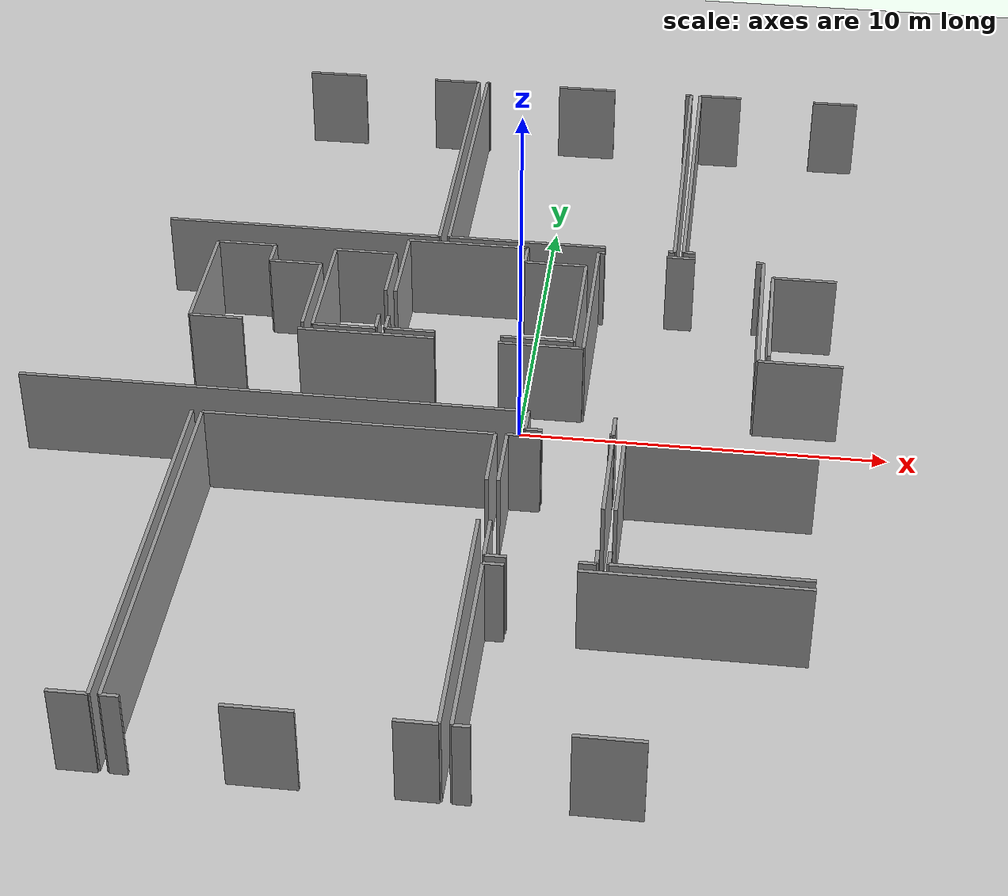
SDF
<sdf version="1.6">
 <world name="default">
  <model name="ground_plane">
   <static>1</static>
   <link name="link">
    <collision name="collision">
     <geometry><plane><normal>0 0 1</normal><size>100 100</size></plane></geometry>
     <surface><friction><ode><mu>100</mu><mu2>50</mu2></ode></friction></surface>
    </collision>
    <visual name="visual">
     <cast_shadows>0</cast_shadows>
     <geometry><plane><normal>0 0 1</normal><size>100 100</size></plane></geometry>
     <material>
      <script><uri>file://media/materials/scripts/gazebo.material</uri><name>Gazebo/Grey</name></script>
     </material>
    </visual>
   </link>
  </model>
  <model name="0510032266_A_40_1_103">
   <static>1</static>
   <link name="Wall_100">
    <collision name="Wall_100_Collision">
     <geometry><box><size>3.78097009477 0.1 2.5</size></box></geometry>
     <pose>1.89048504739 0 1.25 0 0 0</pose>
    </collision>
    <visual name="Wall_100_Visual">
     <pose>1.89048504739 0 1.25 0 0 0</pose>
     <geometry><box><size>3.78097009477 0.1 2.5</size></box></geometry>
     <material>
      <script><uri>file://media/materials/scripts/gazebo.material</uri><name>Gazebo/Grey</name></script>
      <ambient>1 1 1 1</ambient>
     </material>
    </visual>
    <pose>41.3064095321 -14.046251214 0 0 0 0.0</pose>
   </link>
   <link name="Wall_101">
    <collision name="Wall_101_Collision">
     <geometry><box><size>2.32893843117 0.1 2.5</size></box></geometry>
     <pose>1.16446921558 0 1.25 0 0 0</pose>
    </collision>
    <visual name="Wall_101_Visual">
     <pose>1.16446921558 0 1.25 0 0 0</pose>
     <geometry><box><size>2.32893843117 0.1 2.5</size></box></geometry>
     <material>
      <script><uri>file://media/materials/scripts/gazebo.material</uri><name>Gazebo/Grey</name></script>
      <ambient>1 1 1 1</ambient>
     </material>
    </visual>
    <pose>46.8415740394 -14.046251214 0 0 0 0.0</pose>
   </link>
   <link name="Wall_102">
    <collision name="Wall_102_Collision">
     <geometry><box><size>4.73278275387 0.1 2.5</size></box></geometry>
     <pose>2.36639137694 0 1.25 0 0 0</pose>
    </collision>
    <visual name="Wall_102_Visual">
     <pose>2.36639137694 0 1.25 0 0 0</pose>
     <geometry><box><size>4.73278275387 0.1 2.5</size></box></geometry>
     <material>
      <script><uri>file://media/materials/scripts/gazebo.material</uri><name>Gazebo/Grey</name></script>
      <ambient>1 1 1 1</ambient>
     </material>
    </visual>
    <pose>49.1705124706 -14.046251214 0 0 0 1.57079632679</pose>
   </link>
   <link name="Wall_103">
    <collision name="Wall_103_Collision">
     <geometry><box><size>0.17786975262 0.1 2.5</size></box></geometry>
     <pose>0.0889348763101 0 1.25 0 0 0</pose>
    </collision>
    <visual name="Wall_103_Visual">
     <pose>0.0889348763101 0 1.25 0 0 0</pose>
     <geometry><box><size>0.17786975262 0.1 2.5</size></box></geometry>
     <material>
      <script><uri>file://media/materials/scripts/gazebo.material</uri><name>Gazebo/Grey</name></script>
      <ambient>1 1 1 1</ambient>
     </material>
    </visual>
    <pose>49.1705124706 -9.31346846018 0 0 0 0.0</pose>
   </link>
   <link name="Wall_104">
    <collision name="Wall_104_Collision">
     <geometry><box><size>0.801366080327 0.1 2.5</size></box></geometry>
     <pose>0.400683040164 0 1.25 0 0 0</pose>
    </collision>
    <visual name="Wall_104_Visual">
     <pose>0.400683040164 0 1.25 0 0 0</pose>
     <geometry><box><size>0.801366080327 0.1 2.5</size></box></geometry>
     <material>
      <script><uri>file://media/materials/scripts/gazebo.material</uri><name>Gazebo/Grey</name></script>
      <ambient>1 1 1 1</ambient>
     </material>
    </visual>
    <pose>51.132285074 -9.31346846018 0 0 0 0.0</pose>
   </link>
   <link name="Wall_105">
    <collision name="Wall_105_Collision">
     <geometry><box><size>0.20326158026 0.1 2.5</size></box></geometry>
     <pose>0.10163079013 0 1.25 0 0 0</pose>
    </collision>
    <visual name="Wall_105_Visual">
     <pose>0.10163079013 0 1.25 0 0 0</pose>
     <geometry><box><size>0.20326158026 0.1 2.5</size></box></geometry>
     <material>
      <script><uri>file://media/materials/scripts/gazebo.material</uri><name>Gazebo/Grey</name></script>
      <ambient>1 1 1 1</ambient>
     </material>
    </visual>
    <pose>53.6747687757 -9.31346846018 0 0 0 0.0</pose>
   </link>
   <link name="Wall_106">
    <collision name="Wall_106_Collision">
     <geometry><box><size>4.75043007408 0.1 2.5</size></box></geometry>
     <pose>2.37521503704 0 1.25 0 0 0</pose>
    </collision>
    <visual name="Wall_106_Visual">
     <pose>2.37521503704 0 1.25 0 0 0</pose>
     <geometry><box><size>4.75043007408 0.1 2.5</size></box></geometry>
     <material>
      <script><uri>file://media/materials/scripts/gazebo.material</uri><name>Gazebo/Grey</name></script>
      <ambient>1 1 1 1</ambient>
     </material>
    </visual>
    <pose>53.8780303559 -9.31346846018 0 0 0 -1.57079632679</pose>
   </link>
   <link name="Wall_107">
    <collision name="Wall_107_Collision">
     <geometry><box><size>2.27625038881 0.1 2.5</size></box></geometry>
     <pose>1.13812519441 0 1.25 0 0 0</pose>
    </collision>
    <visual name="Wall_107_Visual">
     <pose>1.13812519441 0 1.25 0 0 0</pose>
     <geometry><box><size>2.27625038881 0.1 2.5</size></box></geometry>
     <material>
      <script><uri>file://media/materials/scripts/gazebo.material</uri><name>Gazebo/Grey</name></script>
      <ambient>1 1 1 1</ambient>
     </material>
    </visual>
    <pose>53.8780303559 -14.0638985343 0 0 0 0.0</pose>
   </link>
   <link name="Wall_129">
    <collision name="Wall_129_Collision">
     <geometry><box><size>0.751344179876 0.1 2.5</size></box></geometry>
     <pose>0.375672089938 0 1.25 0 0 0</pose>
    </collision>
    <visual name="Wall_129_Visual">
     <pose>0.375672089938 0 1.25 0 0 0</pose>
     <geometry><box><size>0.751344179876 0.1 2.5</size></box></geometry>
     <material>
      <script><uri>file://media/materials/scripts/gazebo.material</uri><name>Gazebo/Grey</name></script>
      <ambient>1 1 1 1</ambient>
     </material>
    </visual>
    <pose>50.2807701341 -17.0206499038 0 0 0 -1.57079632679</pose>
   </link>
   <link name="Wall_130">
    <collision name="Wall_130_Collision">
     <geometry><box><size>0.0834121537983 0.1 2.5</size></box></geometry>
     <pose>0.0417060768992 0 1.25 0 0 0</pose>
    </collision>
    <visual name="Wall_130_Visual">
     <pose>0.0417060768992 0 1.25 0 0 0</pose>
     <geometry><box><size>0.0834121537983 0.1 2.5</size></box></geometry>
     <material>
      <script><uri>file://media/materials/scripts/gazebo.material</uri><name>Gazebo/Grey</name></script>
      <ambient>1 1 1 1</ambient>
     </material>
    </visual>
    <pose>50.2807701341 -17.7719940837 0 0 0 3.14159265359</pose>
   </link>
   <link name="Wall_131">
    <collision name="Wall_131_Collision">
     <geometry><box><size>0.444483942843 0.1 2.5</size></box></geometry>
     <pose>0.222241971422 0 1.25 0 0 0</pose>
    </collision>
    <visual name="Wall_131_Visual">
     <pose>0.222241971422 0 1.25 0 0 0</pose>
     <geometry><box><size>0.444483942843 0.1 2.5</size></box></geometry>
     <material>
      <script><uri>file://media/materials/scripts/gazebo.material</uri><name>Gazebo/Grey</name></script>
      <ambient>1 1 1 1</ambient>
     </material>
    </visual>
    <pose>48.4459566688 -17.7719940837 0 0 0 3.14159265359</pose>
   </link>
   <link name="Wall_132">
    <collision name="Wall_132_Collision">
     <geometry><box><size>0.770768928021 0.1 2.5</size></box></geometry>
     <pose>0.38538446401 0 1.25 0 0 0</pose>
    </collision>
    <visual name="Wall_132_Visual">
     <pose>0.38538446401 0 1.25 0 0 0</pose>
     <geometry><box><size>0.770768928021 0.1 2.5</size></box></geometry>
     <material>
      <script><uri>file://media/materials/scripts/gazebo.material</uri><name>Gazebo/Grey</name></script>
      <ambient>1 1 1 1</ambient>
     </material>
    </visual>
    <pose>48.001472726 -17.7719940837 0 0 0 1.57079632679</pose>
   </link>
   <link name="Wall_133">
    <collision name="Wall_133_Collision">
     <geometry><box><size>13.6825132831 0.1 2.5</size></box></geometry>
     <pose>6.84125664155 0 1.25 0 0 0</pose>
    </collision>
    <visual name="Wall_133_Visual">
     <pose>6.84125664155 0 1.25 0 0 0</pose>
     <geometry><box><size>13.6825132831 0.1 2.5</size></box></geometry>
     <material>
      <script><uri>file://media/materials/scripts/gazebo.material</uri><name>Gazebo/Grey</name></script>
      <ambient>1 1 1 1</ambient>
     </material>
    </visual>
    <pose>48.001472726 -17.0012251557 0 0 0 3.14159265359</pose>
   </link>
   <link name="Wall_168">
    <collision name="Wall_168_Collision">
     <geometry><box><size>0.997644907986 0.1 2.5</size></box></geometry>
     <pose>0.498822453993 0 1.25 0 0 0</pose>
    </collision>
    <visual name="Wall_168_Visual">
     <pose>0.498822453993 0 1.25 0 0 0</pose>
     <geometry><box><size>0.997644907986 0.1 2.5</size></box></geometry>
     <material>
      <script><uri>file://media/materials/scripts/gazebo.material</uri><name>Gazebo/Grey</name></script>
      <ambient>1 1 1 1</ambient>
     </material>
    </visual>
    <pose>39.2679536091 -28.6845128895 0 0 0 3.14159265359</pose>
   </link>
   <link name="Wall_174">
    <collision name="Wall_174_Collision">
     <geometry><box><size>10.6537791807 0.1 2.5</size></box></geometry>
     <pose>5.32688959034 0 1.25 0 0 0</pose>
    </collision>
    <visual name="Wall_174_Visual">
     <pose>5.32688959034 0 1.25 0 0 0</pose>
     <geometry><box><size>10.6537791807 0.1 2.5</size></box></geometry>
     <material>
      <script><uri>file://media/materials/scripts/gazebo.material</uri><name>Gazebo/Grey</name></script>
      <ambient>1 1 1 1</ambient>
     </material>
    </visual>
    <pose>39.2598282243 -18.0307368074 0 0 0 -1.57003365042</pose>
   </link>
   <link name="Wall_175">
    <collision name="Wall_175_Collision">
     <geometry><box><size>1.47069465692 0.1 2.5</size></box></geometry>
     <pose>0.735347328462 0 1.25 0 0 0</pose>
    </collision>
    <visual name="Wall_175_Visual">
     <pose>0.735347328462 0 1.25 0 0 0</pose>
     <geometry><box><size>1.47069465692 0.1 2.5</size></box></geometry>
     <material>
      <script><uri>file://media/materials/scripts/gazebo.material</uri><name>Gazebo/Grey</name></script>
      <ambient>1 1 1 1</ambient>
     </material>
    </visual>
    <pose>39.7095174918 -13.7584348477 0 0 0 3.14159265359</pose>
   </link>
   <link name="Wall_176">
    <collision name="Wall_176_Collision">
     <geometry><box><size>3.69501875821 0.1 2.5</size></box></geometry>
     <pose>1.84750937911 0 1.25 0 0 0</pose>
    </collision>
    <visual name="Wall_176_Visual">
     <pose>1.84750937911 0 1.25 0 0 0</pose>
     <geometry><box><size>3.69501875821 0.1 2.5</size></box></geometry>
     <material>
      <script><uri>file://media/materials/scripts/gazebo.material</uri><name>Gazebo/Grey</name></script>
      <ambient>1 1 1 1</ambient>
     </material>
    </visual>
    <pose>38.2388228349 -13.7584348477 0 0 0 1.57079632679</pose>
   </link>
   <link name="Wall_177">
    <collision name="Wall_177_Collision">
     <geometry><box><size>1.67763805219 0.1 2.5</size></box></geometry>
     <pose>0.838819026096 0 1.25 0 0 0</pose>
    </collision>
    <visual name="Wall_177_Visual">
     <pose>0.838819026096 0 1.25 0 0 0</pose>
     <geometry><box><size>1.67763805219 0.1 2.5</size></box></geometry>
     <material>
      <script><uri>file://media/materials/scripts/gazebo.material</uri><name>Gazebo/Grey</name></script>
      <ambient>1 1 1 1</ambient>
     </material>
    </visual>
    <pose>38.2388228349 -10.0634160895 0 0 0 0.0</pose>
   </link>
   <link name="Wall_178">
    <collision name="Wall_178_Collision">
     <geometry><box><size>0.790447594442 0.1 2.5</size></box></geometry>
     <pose>0.395223797221 0 1.25 0 0 0</pose>
    </collision>
    <visual name="Wall_178_Visual">
     <pose>0.395223797221 0 1.25 0 0 0</pose>
     <geometry><box><size>0.790447594442 0.1 2.5</size></box></geometry>
     <material>
      <script><uri>file://media/materials/scripts/gazebo.material</uri><name>Gazebo/Grey</name></script>
      <ambient>1 1 1 1</ambient>
     </material>
    </visual>
    <pose>39.9164608871 -10.0634160895 0 0 0 -1.57079632679</pose>
   </link>
   <link name="Wall_179">
    <collision name="Wall_179_Collision">
     <geometry><box><size>1.46548933226 0.1 2.5</size></box></geometry>
     <pose>0.732744666129 0 1.25 0 0 0</pose>
    </collision>
    <visual name="Wall_179_Visual">
     <pose>0.732744666129 0 1.25 0 0 0</pose>
     <geometry><box><size>1.46548933226 0.1 2.5</size></box></geometry>
     <material>
      <script><uri>file://media/materials/scripts/gazebo.material</uri><name>Gazebo/Grey</name></script>
      <ambient>1 1 1 1</ambient>
     </material>
    </visual>
    <pose>39.9164608871 -10.853863684 0 0 0 0.0</pose>
   </link>
   <link name="Wall_180">
    <collision name="Wall_180_Collision">
     <geometry><box><size>2.90457117487 0.1 2.5</size></box></geometry>
     <pose>1.45228558743 0 1.25 0 0 0</pose>
    </collision>
    <visual name="Wall_180_Visual">
     <pose>1.45228558743 0 1.25 0 0 0</pose>
     <geometry><box><size>2.90457117487 0.1 2.5</size></box></geometry>
     <material>
      <script><uri>file://media/materials/scripts/gazebo.material</uri><name>Gazebo/Grey</name></script>
      <ambient>1 1 1 1</ambient>
     </material>
    </visual>
    <pose>41.3819502193 -10.853863684 0 0 0 -1.57070890657</pose>
   </link>
   <link name="Wall_181">
    <collision name="Wall_181_Collision">
     <geometry><box><size>2.00341520082 0.1 2.5</size></box></geometry>
     <pose>1.00170760041 0 1.25 0 0 0</pose>
    </collision>
    <visual name="Wall_181_Visual">
     <pose>1.00170760041 0 1.25 0 0 0</pose>
     <geometry><box><size>2.00341520082 0.1 2.5</size></box></geometry>
     <material>
      <script><uri>file://media/materials/scripts/gazebo.material</uri><name>Gazebo/Grey</name></script>
      <ambient>1 1 1 1</ambient>
     </material>
    </visual>
    <pose>48.8783794936 -13.7566574198 0 0 0 3.14159265359</pose>
   </link>
   <link name="Wall_182">
    <collision name="Wall_182_Collision">
     <geometry><box><size>1.37280916137 0.1 2.5</size></box></geometry>
     <pose>0.686404580686 0 1.25 0 0 0</pose>
    </collision>
    <visual name="Wall_182_Visual">
     <pose>0.686404580686 0 1.25 0 0 0</pose>
     <geometry><box><size>1.37280916137 0.1 2.5</size></box></geometry>
     <material>
      <script><uri>file://media/materials/scripts/gazebo.material</uri><name>Gazebo/Grey</name></script>
      <ambient>1 1 1 1</ambient>
     </material>
    </visual>
    <pose>45.0664313691 -13.7566574198 0 0 0 3.14159265359</pose>
   </link>
   <link name="Wall_183">
    <collision name="Wall_183_Collision">
     <geometry><box><size>0.585535545385 0.1 2.5</size></box></geometry>
     <pose>0.292767772692 0 1.25 0 0 0</pose>
    </collision>
    <visual name="Wall_183_Visual">
     <pose>0.292767772692 0 1.25 0 0 0</pose>
     <geometry><box><size>0.585535545385 0.1 2.5</size></box></geometry>
     <material>
      <script><uri>file://media/materials/scripts/gazebo.material</uri><name>Gazebo/Grey</name></script>
      <ambient>1 1 1 1</ambient>
     </material>
    </visual>
    <pose>43.6936222077 -13.7566574198 0 0 0 1.57079632679</pose>
   </link>
   <link name="Wall_184">
    <collision name="Wall_184_Collision">
     <geometry><box><size>2.62957767043 0.1 2.5</size></box></geometry>
     <pose>1.31478883521 0 1.25 0 0 0</pose>
    </collision>
    <visual name="Wall_184_Visual">
     <pose>1.31478883521 0 1.25 0 0 0</pose>
     <geometry><box><size>2.62957767043 0.1 2.5</size></box></geometry>
     <material>
      <script><uri>file://media/materials/scripts/gazebo.material</uri><name>Gazebo/Grey</name></script>
      <ambient>1 1 1 1</ambient>
     </material>
    </visual>
    <pose>43.6936222077 -11.9619630422 0 0 0 1.57079632679</pose>
   </link>
   <link name="Wall_185">
    <collision name="Wall_185_Collision">
     <geometry><box><size>3.4400848087 0.1 2.5</size></box></geometry>
     <pose>1.72004240435 0 1.25 0 0 0</pose>
    </collision>
    <visual name="Wall_185_Visual">
     <pose>1.72004240435 0 1.25 0 0 0</pose>
     <geometry><box><size>3.4400848087 0.1 2.5</size></box></geometry>
     <material>
      <script><uri>file://media/materials/scripts/gazebo.material</uri><name>Gazebo/Grey</name></script>
      <ambient>1 1 1 1</ambient>
     </material>
    </visual>
    <pose>43.6936222077 -9.33238537177 0 0 0 0.0</pose>
   </link>
   <link name="Wall_186">
    <collision name="Wall_186_Collision">
     <geometry><box><size>0.726206270512 0.1 2.5</size></box></geometry>
     <pose>0.363103135256 0 1.25 0 0 0</pose>
    </collision>
    <visual name="Wall_186_Visual">
     <pose>0.363103135256 0 1.25 0 0 0</pose>
     <geometry><box><size>0.726206270512 0.1 2.5</size></box></geometry>
     <material>
      <script><uri>file://media/materials/scripts/gazebo.material</uri><name>Gazebo/Grey</name></script>
      <ambient>1 1 1 1</ambient>
     </material>
    </visual>
    <pose>47.1337070164 -9.33238537177 0 0 0 -1.57079632679</pose>
   </link>
   <link name="Wall_187">
    <collision name="Wall_187_Collision">
     <geometry><box><size>1.74467247716 0.1 2.5</size></box></geometry>
     <pose>0.872336238582 0 1.25 0 0 0</pose>
    </collision>
    <visual name="Wall_187_Visual">
     <pose>0.872336238582 0 1.25 0 0 0</pose>
     <geometry><box><size>1.74467247716 0.1 2.5</size></box></geometry>
     <material>
      <script><uri>file://media/materials/scripts/gazebo.material</uri><name>Gazebo/Grey</name></script>
      <ambient>1 1 1 1</ambient>
     </material>
    </visual>
    <pose>47.1337070164 -10.0585916423 0 0 0 0.0</pose>
   </link>
   <link name="Wall_188">
    <collision name="Wall_188_Collision">
     <geometry><box><size>3.69806577753 0.1 2.5</size></box></geometry>
     <pose>1.84903288876 0 1.25 0 0 0</pose>
    </collision>
    <visual name="Wall_188_Visual">
     <pose>1.84903288876 0 1.25 0 0 0</pose>
     <geometry><box><size>3.69806577753 0.1 2.5</size></box></geometry>
     <material>
      <script><uri>file://media/materials/scripts/gazebo.material</uri><name>Gazebo/Grey</name></script>
      <ambient>1 1 1 1</ambient>
     </material>
    </visual>
    <pose>48.8783794936 -10.0585916423 0 0 0 -1.57079632679</pose>
   </link>
   <link name="Wall_189">
    <collision name="Wall_189_Collision">
     <geometry><box><size>1.75203610718 0.1 2.5</size></box></geometry>
     <pose>0.876018053589 0 1.25 0 0 0</pose>
    </collision>
    <visual name="Wall_189_Visual">
     <pose>0.876018053589 0 1.25 0 0 0</pose>
     <geometry><box><size>1.75203610718 0.1 2.5</size></box></geometry>
     <material>
      <script><uri>file://media/materials/scripts/gazebo.material</uri><name>Gazebo/Grey</name></script>
      <ambient>1 1 1 1</ambient>
     </material>
    </visual>
    <pose>43.4285315271 -13.7858580216 0 0 0 3.14159265359</pose>
   </link>
   <link name="Wall_190">
    <collision name="Wall_190_Collision">
     <geometry><box><size>3.70720683548 0.1 2.5</size></box></geometry>
     <pose>1.85360341774 0 1.25 0 0 0</pose>
    </collision>
    <visual name="Wall_190_Visual">
     <pose>1.85360341774 0 1.25 0 0 0</pose>
     <geometry><box><size>3.70720683548 0.1 2.5</size></box></geometry>
     <material>
      <script><uri>file://media/materials/scripts/gazebo.material</uri><name>Gazebo/Grey</name></script>
      <ambient>1 1 1 1</ambient>
     </material>
    </visual>
    <pose>41.6764954199 -13.7858580216 0 0 0 1.57079632679</pose>
   </link>
   <link name="Wall_191">
    <collision name="Wall_191_Collision">
     <geometry><box><size>1.73934019336 0.1 2.5</size></box></geometry>
     <pose>0.869670096679 0 1.25 0 0 0</pose>
    </collision>
    <visual name="Wall_191_Visual">
     <pose>0.869670096679 0 1.25 0 0 0</pose>
     <geometry><box><size>1.73934019336 0.1 2.5</size></box></geometry>
     <material>
      <script><uri>file://media/materials/scripts/gazebo.material</uri><name>Gazebo/Grey</name></script>
      <ambient>1 1 1 1</ambient>
     </material>
    </visual>
    <pose>41.6764954199 -10.0786511861 0 0 0 0.0</pose>
   </link>
   <link name="Wall_192">
    <collision name="Wall_192_Collision">
     <geometry><box><size>1.87899524538 0.1 2.5</size></box></geometry>
     <pose>0.93949762269 0 1.25 0 0 0</pose>
    </collision>
    <visual name="Wall_192_Visual">
     <pose>0.93949762269 0 1.25 0 0 0</pose>
     <geometry><box><size>1.87899524538 0.1 2.5</size></box></geometry>
     <material>
      <script><uri>file://media/materials/scripts/gazebo.material</uri><name>Gazebo/Grey</name></script>
      <ambient>1 1 1 1</ambient>
     </material>
    </visual>
    <pose>43.4158356133 -10.0786511861 0 0 0 -1.57079632679</pose>
   </link>
   <link name="Wall_193">
    <collision name="Wall_193_Collision">
     <geometry><box><size>0.668814293247 0.1 2.5</size></box></geometry>
     <pose>0.334407146623 0 1.25 0 0 0</pose>
    </collision>
    <visual name="Wall_193_Visual">
     <pose>0.334407146623 0 1.25 0 0 0</pose>
     <geometry><box><size>0.668814293247 0.1 2.5</size></box></geometry>
     <material>
      <script><uri>file://media/materials/scripts/gazebo.material</uri><name>Gazebo/Grey</name></script>
      <ambient>1 1 1 1</ambient>
     </material>
    </visual>
    <pose>43.4158356133 -13.1171642407 0 0 0 -1.55181246752</pose>
   </link>
   <link name="Wall_200">
    <collision name="Wall_200_Collision">
     <geometry><box><size>7.93494613759 0.1 2.5</size></box></geometry>
     <pose>3.96747306879 0 1.25 0 0 0</pose>
    </collision>
    <visual name="Wall_200_Visual">
     <pose>3.96747306879 0 1.25 0 0 0</pose>
     <geometry><box><size>7.93494613759 0.1 2.5</size></box></geometry>
     <material>
      <script><uri>file://media/materials/scripts/gazebo.material</uri><name>Gazebo/Grey</name></script>
      <ambient>1 1 1 1</ambient>
     </material>
    </visual>
    <pose>44.5330760295 -9.05028216668 0 0 0 3.14159265359</pose>
   </link>
   <link name="Wall_204">
    <collision name="Wall_204_Collision">
     <geometry><box><size>1.76397026617 0.1 2.5</size></box></geometry>
     <pose>0.881985133085 0 1.25 0 0 0</pose>
    </collision>
    <visual name="Wall_204_Visual">
     <pose>0.881985133085 0 1.25 0 0 0</pose>
     <geometry><box><size>1.76397026617 0.1 2.5</size></box></geometry>
     <material>
      <script><uri>file://media/materials/scripts/gazebo.material</uri><name>Gazebo/Grey</name></script>
      <ambient>1 1 1 1</ambient>
     </material>
    </visual>
    <pose>39.1277907206 -0.022090890047 0 0 0 0.0</pose>
   </link>
   <link name="Wall_205">
    <collision name="Wall_205_Collision">
     <geometry><box><size>1.40759596524 0.1 2.5</size></box></geometry>
     <pose>0.703797982619 0 1.25 0 0 0</pose>
    </collision>
    <visual name="Wall_205_Visual">
     <pose>0.703797982619 0 1.25 0 0 0</pose>
     <geometry><box><size>1.40759596524 0.1 2.5</size></box></geometry>
     <material>
      <script><uri>file://media/materials/scripts/gazebo.material</uri><name>Gazebo/Grey</name></script>
      <ambient>1 1 1 1</ambient>
     </material>
    </visual>
    <pose>43.124337432 -0.022090890047 0 0 0 0.0</pose>
   </link>
   <link name="Wall_206">
    <collision name="Wall_206_Collision">
     <geometry><box><size>9.02819134894 0.1 2.5</size></box></geometry>
     <pose>4.51409567447 0 1.25 0 0 0</pose>
    </collision>
    <visual name="Wall_206_Visual">
     <pose>4.51409567447 0 1.25 0 0 0</pose>
     <geometry><box><size>9.02819134894 0.1 2.5</size></box></geometry>
     <material>
      <script><uri>file://media/materials/scripts/gazebo.material</uri><name>Gazebo/Grey</name></script>
      <ambient>1 1 1 1</ambient>
     </material>
    </visual>
    <pose>44.5319333972 -0.022090890047 0 0 0 -1.5706697641</pose>
   </link>
   <link name="Wall_207">
    <collision name="Wall_207_Collision">
     <geometry><box><size>0.182440281595 0.1 2.5</size></box></geometry>
     <pose>0.0912201407977 0 1.25 0 0 0</pose>
    </collision>
    <visual name="Wall_207_Visual">
     <pose>0.0912201407977 0 1.25 0 0 0</pose>
     <geometry><box><size>0.182440281595 0.1 2.5</size></box></geometry>
     <material>
      <script><uri>file://media/materials/scripts/gazebo.material</uri><name>Gazebo/Grey</name></script>
      <ambient>1 1 1 1</ambient>
     </material>
    </visual>
    <pose>51.3351657769 -9.03352356044 0 0 0 3.14159265359</pose>
   </link>
   <link name="Wall_208">
    <collision name="Wall_208_Collision">
     <geometry><box><size>4.53764655846 0.1 2.5</size></box></geometry>
     <pose>2.26882327923 0 1.25 0 0 0</pose>
    </collision>
    <visual name="Wall_208_Visual">
     <pose>2.26882327923 0 1.25 0 0 0</pose>
     <geometry><box><size>4.53764655846 0.1 2.5</size></box></geometry>
     <material>
      <script><uri>file://media/materials/scripts/gazebo.material</uri><name>Gazebo/Grey</name></script>
      <ambient>1 1 1 1</ambient>
     </material>
    </visual>
    <pose>49.3448273673 -9.03352356044 0 0 0 3.14159265359</pose>
   </link>
   <link name="Wall_209">
    <collision name="Wall_209_Collision">
     <geometry><box><size>9.0114326704 0.1 2.5</size></box></geometry>
     <pose>4.5057163352 0 1.25 0 0 0</pose>
    </collision>
    <visual name="Wall_209_Visual">
     <pose>4.5057163352 0 1.25 0 0 0</pose>
     <geometry><box><size>9.0114326704 0.1 2.5</size></box></geometry>
     <material>
      <script><uri>file://media/materials/scripts/gazebo.material</uri><name>Gazebo/Grey</name></script>
      <ambient>1 1 1 1</ambient>
     </material>
    </visual>
    <pose>44.8071808089 -9.03352356044 0 0 0 1.57079632679</pose>
   </link>
   <link name="Wall_210">
    <collision name="Wall_210_Collision">
     <geometry><box><size>0.0915375386432 0.1 2.5</size></box></geometry>
     <pose>0.0457687693216 0 1.25 0 0 0</pose>
    </collision>
    <visual name="Wall_210_Visual">
     <pose>0.0457687693216 0 1.25 0 0 0</pose>
     <geometry><box><size>0.0915375386432 0.1 2.5</size></box></geometry>
     <material>
      <script><uri>file://media/materials/scripts/gazebo.material</uri><name>Gazebo/Grey</name></script>
      <ambient>1 1 1 1</ambient>
     </material>
    </visual>
    <pose>44.8071808089 -0.022090890047 0 0 0 0.0</pose>
   </link>
   <link name="Wall_211">
    <collision name="Wall_211_Collision">
     <geometry><box><size>1.77120693705 0.1 2.5</size></box></geometry>
     <pose>0.885603468524 0 1.25 0 0 0</pose>
    </collision>
    <visual name="Wall_211_Visual">
     <pose>0.885603468524 0 1.25 0 0 0</pose>
     <geometry><box><size>1.77120693705 0.1 2.5</size></box></geometry>
     <material>
      <script><uri>file://media/materials/scripts/gazebo.material</uri><name>Gazebo/Grey</name></script>
      <ambient>1 1 1 1</ambient>
     </material>
    </visual>
    <pose>47.1198684703 -0.022090890047 0 0 0 0.0</pose>
   </link>
   <link name="Wall_212">
    <collision name="Wall_212_Collision">
     <geometry><box><size>0.174187937612 0.1 2.5</size></box></geometry>
     <pose>0.0870939688061 0 1.25 0 0 0</pose>
    </collision>
    <visual name="Wall_212_Visual">
     <pose>0.0870939688061 0 1.25 0 0 0</pose>
     <geometry><box><size>0.174187937612 0.1 2.5</size></box></geometry>
     <material>
      <script><uri>file://media/materials/scripts/gazebo.material</uri><name>Gazebo/Grey</name></script>
      <ambient>1 1 1 1</ambient>
     </material>
    </visual>
    <pose>51.1268258311 -0.022090890047 0 0 0 0.0</pose>
   </link>
   <link name="Wall_213">
    <collision name="Wall_213_Collision">
     <geometry><box><size>9.01149738571 0.1 2.5</size></box></geometry>
     <pose>4.50574869286 0 1.25 0 0 0</pose>
    </collision>
    <visual name="Wall_213_Visual">
     <pose>4.50574869286 0 1.25 0 0 0</pose>
     <geometry><box><size>9.01149738571 0.1 2.5</size></box></geometry>
     <material>
      <script><uri>file://media/materials/scripts/gazebo.material</uri><name>Gazebo/Grey</name></script>
      <ambient>1 1 1 1</ambient>
     </material>
    </visual>
    <pose>51.3010137687 -0.022090890047 0 0 0 -1.5670064916</pose>
   </link>
   <link name="Wall_215">
    <collision name="Wall_215_Collision">
     <geometry><box><size>0.331109432429 0.1 2.5</size></box></geometry>
     <pose>0.165554716215 0 1.25 0 0 0</pose>
    </collision>
    <visual name="Wall_215_Visual">
     <pose>0.165554716215 0 1.25 0 0 0</pose>
     <geometry><box><size>0.331109432429 0.1 2.5</size></box></geometry>
     <material>
      <script><uri>file://media/materials/scripts/gazebo.material</uri><name>Gazebo/Grey</name></script>
      <ambient>1 1 1 1</ambient>
     </material>
    </visual>
    <pose>51.9226057094 -9.01435273057 0 0 0 3.14159265359</pose>
   </link>
   <link name="Wall_216">
    <collision name="Wall_216_Collision">
     <geometry><box><size>8.99518190071 0.1 2.5</size></box></geometry>
     <pose>4.49759095035 0 1.25 0 0 0</pose>
    </collision>
    <visual name="Wall_216_Visual">
     <pose>4.49759095035 0 1.25 0 0 0</pose>
     <geometry><box><size>8.99518190071 0.1 2.5</size></box></geometry>
     <material>
      <script><uri>file://media/materials/scripts/gazebo.material</uri><name>Gazebo/Grey</name></script>
      <ambient>1 1 1 1</ambient>
     </material>
    </visual>
    <pose>51.5914962769 -9.01435273057 0 0 0 1.57079632679</pose>
   </link>
   <link name="Wall_217">
    <collision name="Wall_217_Collision">
     <geometry><box><size>1.27962115393 0.1 2.5</size></box></geometry>
     <pose>0.639810576966 0 1.25 0 0 0</pose>
    </collision>
    <visual name="Wall_217_Visual">
     <pose>0.639810576966 0 1.25 0 0 0</pose>
     <geometry><box><size>1.27962115393 0.1 2.5</size></box></geometry>
     <material>
      <script><uri>file://media/materials/scripts/gazebo.material</uri><name>Gazebo/Grey</name></script>
      <ambient>1 1 1 1</ambient>
     </material>
    </visual>
    <pose>51.5914962769 -0.0191708298684 0 0 0 0.0</pose>
   </link>
   <link name="Wall_218">
    <collision name="Wall_218_Collision">
     <geometry><box><size>1.36468377653 0.1 2.5</size></box></geometry>
     <pose>0.682341888263 0 1.25 0 0 0</pose>
    </collision>
    <visual name="Wall_218_Visual">
     <pose>0.682341888263 0 1.25 0 0 0</pose>
     <geometry><box><size>1.36468377653 0.1 2.5</size></box></geometry>
     <material>
      <script><uri>file://media/materials/scripts/gazebo.material</uri><name>Gazebo/Grey</name></script>
      <ambient>1 1 1 1</ambient>
     </material>
    </visual>
    <pose>55.1410198628 -0.0191708298684 0 0 0 0.0</pose>
   </link>
   <link name="Wall_220">
    <collision name="Wall_220_Collision">
     <geometry><box><size>0.435469844031 0.1 2.5</size></box></geometry>
     <pose>0.217734922015 0 1.25 0 0 0</pose>
    </collision>
    <visual name="Wall_220_Visual">
     <pose>0.217734922015 0 1.25 0 0 0</pose>
     <geometry><box><size>0.435469844031 0.1 2.5</size></box></geometry>
     <material>
      <script><uri>file://media/materials/scripts/gazebo.material</uri><name>Gazebo/Grey</name></script>
      <ambient>1 1 1 1</ambient>
     </material>
    </visual>
    <pose>50.2993061683 -22.8369019431 0 0 0 3.14159265359</pose>
   </link>
   <link name="Wall_221">
    <collision name="Wall_221_Collision">
     <geometry><box><size>0.551002659794 0.1 2.5</size></box></geometry>
     <pose>0.275501329897 0 1.25 0 0 0</pose>
    </collision>
    <visual name="Wall_221_Visual">
     <pose>0.275501329897 0 1.25 0 0 0</pose>
     <geometry><box><size>0.551002659794 0.1 2.5</size></box></geometry>
     <material>
      <script><uri>file://media/materials/scripts/gazebo.material</uri><name>Gazebo/Grey</name></script>
      <ambient>1 1 1 1</ambient>
     </material>
    </visual>
    <pose>48.1104036666 -22.8369019431 0 0 0 3.14159265359</pose>
   </link>
   <link name="Wall_222">
    <collision name="Wall_222_Collision">
     <geometry><box><size>1.30006157518 0.1 2.5</size></box></geometry>
     <pose>0.650030787591 0 1.25 0 0 0</pose>
    </collision>
    <visual name="Wall_222_Visual">
     <pose>0.650030787591 0 1.25 0 0 0</pose>
     <geometry><box><size>1.30006157518 0.1 2.5</size></box></geometry>
     <material>
      <script><uri>file://media/materials/scripts/gazebo.material</uri><name>Gazebo/Grey</name></script>
      <ambient>1 1 1 1</ambient>
     </material>
    </visual>
    <pose>47.5594010068 -22.8369019431 0 0 0 1.57079632679</pose>
   </link>
   <link name="Wall_223">
    <collision name="Wall_223_Collision">
     <geometry><box><size>1.91035415252 0.1 2.5</size></box></geometry>
     <pose>0.955177076258 0 1.25 0 0 0</pose>
    </collision>
    <visual name="Wall_223_Visual">
     <pose>0.955177076258 0 1.25 0 0 0</pose>
     <geometry><box><size>1.91035415252 0.1 2.5</size></box></geometry>
     <material>
      <script><uri>file://media/materials/scripts/gazebo.material</uri><name>Gazebo/Grey</name></script>
      <ambient>1 1 1 1</ambient>
     </material>
    </visual>
    <pose>47.5594010068 -19.9582304435 0 0 0 1.57079632679</pose>
   </link>
   <link name="Wall_224">
    <collision name="Wall_224_Collision">
     <geometry><box><size>0.876525890142 0.1 2.5</size></box></geometry>
     <pose>0.438262945071 0 1.25 0 0 0</pose>
    </collision>
    <visual name="Wall_224_Visual">
     <pose>0.438262945071 0 1.25 0 0 0</pose>
     <geometry><box><size>0.876525890142 0.1 2.5</size></box></geometry>
     <material>
      <script><uri>file://media/materials/scripts/gazebo.material</uri><name>Gazebo/Grey</name></script>
      <ambient>1 1 1 1</ambient>
     </material>
    </visual>
    <pose>47.5594010068 -18.047876291 0 0 0 0.0</pose>
   </link>
   <link name="Wall_225">
    <collision name="Wall_225_Collision">
     <geometry><box><size>0.101694269699 0.1 2.5</size></box></geometry>
     <pose>0.0508471348497 0 1.25 0 0 0</pose>
    </collision>
    <visual name="Wall_225_Visual">
     <pose>0.0508471348497 0 1.25 0 0 0</pose>
     <geometry><box><size>0.101694269699 0.1 2.5</size></box></geometry>
     <material>
      <script><uri>file://media/materials/scripts/gazebo.material</uri><name>Gazebo/Grey</name></script>
      <ambient>1 1 1 1</ambient>
     </material>
    </visual>
    <pose>50.1831385569 -18.047876291 0 0 0 0.0</pose>
   </link>
   <link name="Wall_226">
    <collision name="Wall_226_Collision">
     <geometry><box><size>2.72632053374 0.1 2.5</size></box></geometry>
     <pose>1.36316026687 0 1.25 0 0 0</pose>
    </collision>
    <visual name="Wall_226_Visual">
     <pose>1.36316026687 0 1.25 0 0 0</pose>
     <geometry><box><size>2.72632053374 0.1 2.5</size></box></geometry>
     <material>
      <script><uri>file://media/materials/scripts/gazebo.material</uri><name>Gazebo/Grey</name></script>
      <ambient>1 1 1 1</ambient>
     </material>
    </visual>
    <pose>50.2848328266 -18.047876291 0 0 0 -1.57079632679</pose>
   </link>
   <link name="Wall_227">
    <collision name="Wall_227_Collision">
     <geometry><box><size>0.506266052078 0.1 2.5</size></box></geometry>
     <pose>0.253133026039 0 1.25 0 0 0</pose>
    </collision>
    <visual name="Wall_227_Visual">
     <pose>0.253133026039 0 1.25 0 0 0</pose>
     <geometry><box><size>0.506266052078 0.1 2.5</size></box></geometry>
     <material>
      <script><uri>file://media/materials/scripts/gazebo.material</uri><name>Gazebo/Grey</name></script>
      <ambient>1 1 1 1</ambient>
     </material>
    </visual>
    <pose>50.2848328266 -22.3308428182 0 0 0 -1.54220402059</pose>
   </link>
   <link name="Wall_228">
    <collision name="Wall_228_Collision">
     <geometry><box><size>1.04525458481 0.1 2.5</size></box></geometry>
     <pose>0.522627292406 0 1.25 0 0 0</pose>
    </collision>
    <visual name="Wall_228_Visual">
     <pose>0.522627292406 0 1.25 0 0 0</pose>
     <geometry><box><size>1.04525458481 0.1 2.5</size></box></geometry>
     <material>
      <script><uri>file://media/materials/scripts/gazebo.material</uri><name>Gazebo/Grey</name></script>
      <ambient>1 1 1 1</ambient>
     </material>
    </visual>
    <pose>47.2795830662 -28.6730865671 0 0 0 3.14159265359</pose>
   </link>
   <link name="Wall_229">
    <collision name="Wall_229_Collision">
     <geometry><box><size>1.72765995264 0.1 2.5</size></box></geometry>
     <pose>0.863829976322 0 1.25 0 0 0</pose>
    </collision>
    <visual name="Wall_229_Visual">
     <pose>0.863829976322 0 1.25 0 0 0</pose>
     <geometry><box><size>1.72765995264 0.1 2.5</size></box></geometry>
     <material>
      <script><uri>file://media/materials/scripts/gazebo.material</uri><name>Gazebo/Grey</name></script>
      <ambient>1 1 1 1</ambient>
     </material>
    </visual>
    <pose>44.0058147285 -28.6730865671 0 0 0 3.14159265359</pose>
   </link>
   <link name="Wall_230">
    <collision name="Wall_230_Collision">
     <geometry><box><size>0.450070144924 0.1 2.5</size></box></geometry>
     <pose>0.225035072462 0 1.25 0 0 0</pose>
    </collision>
    <visual name="Wall_230_Visual">
     <pose>0.225035072462 0 1.25 0 0 0</pose>
     <geometry><box><size>0.450070144924 0.1 2.5</size></box></geometry>
     <material>
      <script><uri>file://media/materials/scripts/gazebo.material</uri><name>Gazebo/Grey</name></script>
      <ambient>1 1 1 1</ambient>
     </material>
    </visual>
    <pose>39.984384026 -28.6730865671 0 0 0 3.14159265359</pose>
   </link>
   <link name="Wall_231">
    <collision name="Wall_231_Collision">
     <geometry><box><size>10.6125143623 0.1 2.5</size></box></geometry>
     <pose>5.30625718113 0 1.25 0 0 0</pose>
    </collision>
    <visual name="Wall_231_Visual">
     <pose>5.30625718113 0 1.25 0 0 0</pose>
     <geometry><box><size>10.6125143623 0.1 2.5</size></box></geometry>
     <material>
      <script><uri>file://media/materials/scripts/gazebo.material</uri><name>Gazebo/Grey</name></script>
      <ambient>1 1 1 1</ambient>
     </material>
    </visual>
    <pose>39.5343138811 -28.6730865671 0 0 0 1.57079632679</pose>
   </link>
   <link name="Wall_232">
    <collision name="Wall_232_Collision">
     <geometry><box><size>7.72355917248 0.1 2.5</size></box></geometry>
     <pose>3.86177958624 0 1.25 0 0 0</pose>
    </collision>
    <visual name="Wall_232_Visual">
     <pose>3.86177958624 0 1.25 0 0 0</pose>
     <geometry><box><size>7.72355917248 0.1 2.5</size></box></geometry>
     <material>
      <script><uri>file://media/materials/scripts/gazebo.material</uri><name>Gazebo/Grey</name></script>
      <ambient>1 1 1 1</ambient>
     </material>
    </visual>
    <pose>39.5343138811 -18.0605722048 0 0 0 0.0</pose>
   </link>
   <link name="Wall_233">
    <collision name="Wall_233_Collision">
     <geometry><box><size>1.908957602 0.1 2.5</size></box></geometry>
     <pose>0.954478800998 0 1.25 0 0 0</pose>
    </collision>
    <visual name="Wall_233_Visual">
     <pose>0.954478800998 0 1.25 0 0 0</pose>
     <geometry><box><size>1.908957602 0.1 2.5</size></box></geometry>
     <material>
      <script><uri>file://media/materials/scripts/gazebo.material</uri><name>Gazebo/Grey</name></script>
      <ambient>1 1 1 1</ambient>
     </material>
    </visual>
    <pose>47.2578730536 -18.0605722048 0 0 0 -1.57079632679</pose>
   </link>
   <link name="Wall_234">
    <collision name="Wall_234_Collision">
     <geometry><box><size>7.14465848677 0.1 2.5</size></box></geometry>
     <pose>3.57232924338 0 1.25 0 0 0</pose>
    </collision>
    <visual name="Wall_234_Visual">
     <pose>3.57232924338 0 1.25 0 0 0</pose>
     <geometry><box><size>7.14465848677 0.1 2.5</size></box></geometry>
     <material>
      <script><uri>file://media/materials/scripts/gazebo.material</uri><name>Gazebo/Grey</name></script>
      <ambient>1 1 1 1</ambient>
     </material>
    </visual>
    <pose>47.2578730536 -21.5284610648 0 0 0 -1.56775768666</pose>
   </link>
   <link name="Wall_236">
    <collision name="Wall_236_Collision">
     <geometry><box><size>1.70417251208 0.1 2.5</size></box></geometry>
     <pose>0.852086256038 0 1.25 0 0 0</pose>
    </collision>
    <visual name="Wall_236_Visual">
     <pose>0.852086256038 0 1.25 0 0 0</pose>
     <geometry><box><size>1.70417251208 0.1 2.5</size></box></geometry>
     <material>
      <script><uri>file://media/materials/scripts/gazebo.material</uri><name>Gazebo/Grey</name></script>
      <ambient>1 1 1 1</ambient>
     </material>
    </visual>
    <pose>51.9675492443 -28.6653420597 0 0 0 3.14159265359</pose>
   </link>
   <link name="Wall_237">
    <collision name="Wall_237_Collision">
     <geometry><box><size>0.429248846259 0.1 2.5</size></box></geometry>
     <pose>0.214624423129 0 1.25 0 0 0</pose>
    </collision>
    <visual name="Wall_237_Visual">
     <pose>0.214624423129 0 1.25 0 0 0</pose>
     <geometry><box><size>0.429248846259 0.1 2.5</size></box></geometry>
     <material>
      <script><uri>file://media/materials/scripts/gazebo.material</uri><name>Gazebo/Grey</name></script>
      <ambient>1 1 1 1</ambient>
     </material>
    </visual>
    <pose>47.9972830744 -28.6653420597 0 0 0 3.14159265359</pose>
   </link>
   <link name="Wall_238">
    <collision name="Wall_238_Collision">
     <geometry><box><size>5.52703912246 0.1 2.5</size></box></geometry>
     <pose>2.76351956123 0 1.25 0 0 0</pose>
    </collision>
    <visual name="Wall_238_Visual">
     <pose>2.76351956123 0 1.25 0 0 0</pose>
     <geometry><box><size>5.52703912246 0.1 2.5</size></box></geometry>
     <material>
      <script><uri>file://media/materials/scripts/gazebo.material</uri><name>Gazebo/Grey</name></script>
      <ambient>1 1 1 1</ambient>
     </material>
    </visual>
    <pose>47.5680342282 -28.6653420597 0 0 0 1.57079632679</pose>
   </link>
   <link name="Wall_239">
    <collision name="Wall_239_Collision">
     <geometry><box><size>0.519643752658 0.1 2.5</size></box></geometry>
     <pose>0.259821876329 0 1.25 0 0 0</pose>
    </collision>
    <visual name="Wall_239_Visual">
     <pose>0.259821876329 0 1.25 0 0 0</pose>
     <geometry><box><size>0.519643752658 0.1 2.5</size></box></geometry>
     <material>
      <script><uri>file://media/materials/scripts/gazebo.material</uri><name>Gazebo/Grey</name></script>
      <ambient>1 1 1 1</ambient>
     </material>
    </visual>
    <pose>47.5680342282 -23.1383029372 0 0 0 0.0</pose>
   </link>
   <link name="Wall_240">
    <collision name="Wall_240_Collision">
     <geometry><box><size>5.70770197612 0.1 2.5</size></box></geometry>
     <pose>2.85385098806 0 1.25 0 0 0</pose>
    </collision>
    <visual name="Wall_240_Visual">
     <pose>2.85385098806 0 1.25 0 0 0</pose>
     <geometry><box><size>5.70770197612 0.1 2.5</size></box></geometry>
     <material>
      <script><uri>file://media/materials/scripts/gazebo.material</uri><name>Gazebo/Grey</name></script>
      <ambient>1 1 1 1</ambient>
     </material>
    </visual>
    <pose>49.8691686081 -23.1383029372 0 0 0 0.0</pose>
   </link>
   <link name="Wall_242">
    <collision name="Wall_242_Collision">
     <geometry><box><size>4.9718468111 0.1 2.5</size></box></geometry>
     <pose>2.48592340555 0 1.25 0 0 0</pose>
    </collision>
    <visual name="Wall_242_Visual">
     <pose>2.48592340555 0 1.25 0 0 0</pose>
     <geometry><box><size>4.9718468111 0.1 2.5</size></box></geometry>
     <material>
      <script><uri>file://media/materials/scripts/gazebo.material</uri><name>Gazebo/Grey</name></script>
      <ambient>1 1 1 1</ambient>
     </material>
    </visual>
    <pose>55.5687451994 -22.8190007046 0 0 0 3.14159265359</pose>
   </link>
   <link name="Wall_243">
    <collision name="Wall_243_Collision">
     <geometry><box><size>0.468479219963 0.1 2.5</size></box></geometry>
     <pose>0.234239609982 0 1.25 0 0 0</pose>
    </collision>
    <visual name="Wall_243_Visual">
     <pose>0.234239609982 0 1.25 0 0 0</pose>
     <geometry><box><size>0.468479219963 0.1 2.5</size></box></geometry>
     <material>
      <script><uri>file://media/materials/scripts/gazebo.material</uri><name>Gazebo/Grey</name></script>
      <ambient>1 1 1 1</ambient>
     </material>
    </visual>
    <pose>50.5968983883 -22.8190007046 0 0 0 1.57079632679</pose>
   </link>
   <link name="Wall_244">
    <collision name="Wall_244_Collision">
     <geometry><box><size>2.72060737252 0.1 2.5</size></box></geometry>
     <pose>1.36030368626 0 1.25 0 0 0</pose>
    </collision>
    <visual name="Wall_244_Visual">
     <pose>1.36030368626 0 1.25 0 0 0</pose>
     <geometry><box><size>2.72060737252 0.1 2.5</size></box></geometry>
     <material>
      <script><uri>file://media/materials/scripts/gazebo.material</uri><name>Gazebo/Grey</name></script>
      <ambient>1 1 1 1</ambient>
     </material>
    </visual>
    <pose>50.5968983883 -20.7901936762 0 0 0 1.57079632679</pose>
   </link>
   <link name="Wall_245">
    <collision name="Wall_245_Collision">
     <geometry><box><size>4.97489383042 0.1 2.5</size></box></geometry>
     <pose>2.48744691521 0 1.25 0 0 0</pose>
    </collision>
    <visual name="Wall_245_Visual">
     <pose>2.48744691521 0 1.25 0 0 0</pose>
     <geometry><box><size>4.97489383042 0.1 2.5</size></box></geometry>
     <material>
      <script><uri>file://media/materials/scripts/gazebo.material</uri><name>Gazebo/Grey</name></script>
      <ambient>1 1 1 1</ambient>
     </material>
    </visual>
    <pose>50.5968983883 -18.0695863036 0 0 0 0.0</pose>
   </link>
   <link name="Wall_249">
    <collision name="Wall_249_Collision">
     <geometry><box><size>3.76802026268 0.1 2.5</size></box></geometry>
     <pose>1.88401013134 0 1.25 0 0 0</pose>
    </collision>
    <visual name="Wall_249_Visual">
     <pose>1.88401013134 0 1.25 0 0 0</pose>
     <geometry><box><size>3.76802026268 0.1 2.5</size></box></geometry>
     <material>
      <script><uri>file://media/materials/scripts/gazebo.material</uri><name>Gazebo/Grey</name></script>
      <ambient>1 1 1 1</ambient>
     </material>
    </visual>
    <pose>54.1671163136 -13.7903015914 0 0 0 1.57079632679</pose>
   </link>
   <link name="Wall_250">
    <collision name="Wall_250_Collision">
     <geometry><box><size>1.78555331966 0.1 2.5</size></box></geometry>
     <pose>0.892776659832 0 1.25 0 0 0</pose>
    </collision>
    <visual name="Wall_250_Visual">
     <pose>0.892776659832 0 1.25 0 0 0</pose>
     <geometry><box><size>1.78555331966 0.1 2.5</size></box></geometry>
     <material>
      <script><uri>file://media/materials/scripts/gazebo.material</uri><name>Gazebo/Grey</name></script>
      <ambient>1 1 1 1</ambient>
     </material>
    </visual>
    <pose>54.1671163136 -10.0222813288 0 0 0 0.0</pose>
   </link>
   <pose>-47.55 14.841224267 0 0 0 0</pose>
  </model>
 </world>
</sdf>
